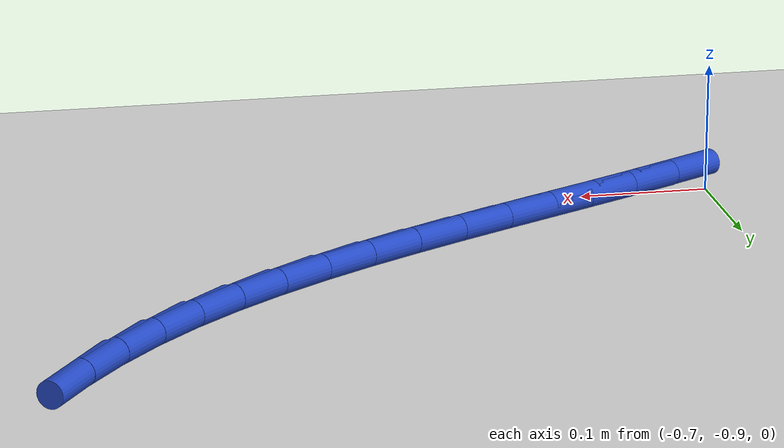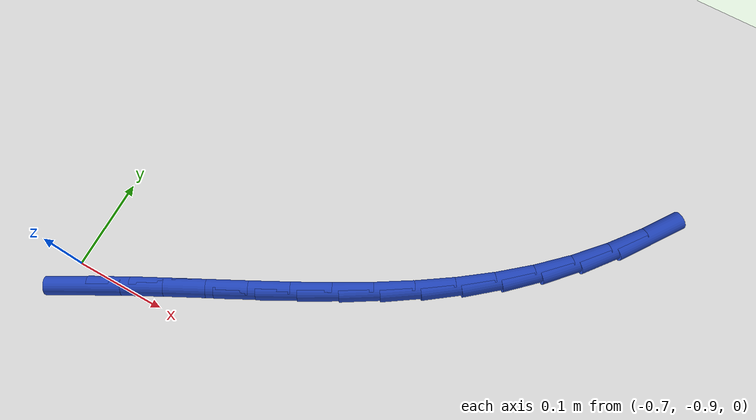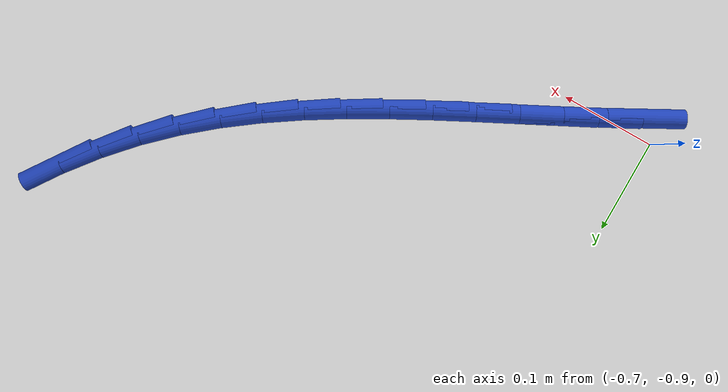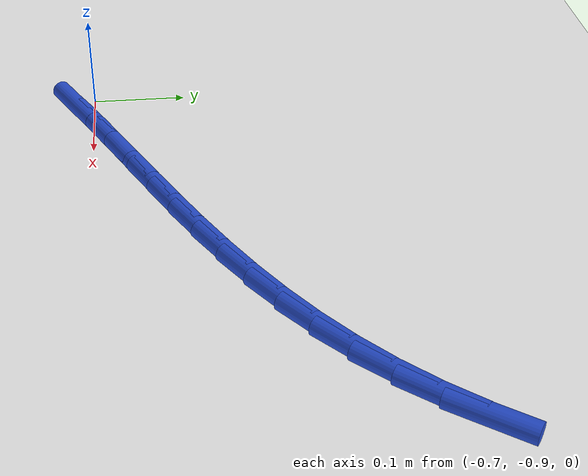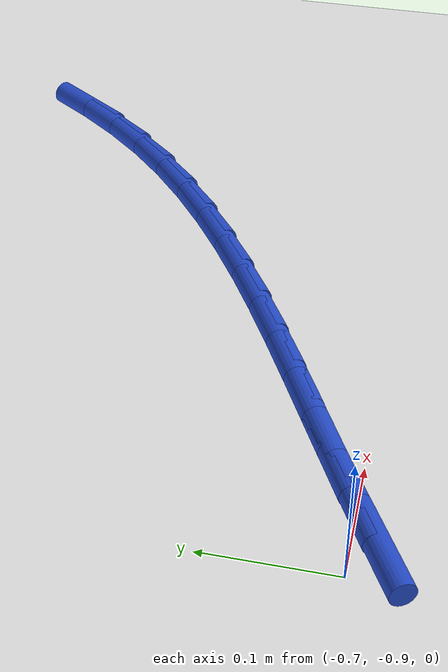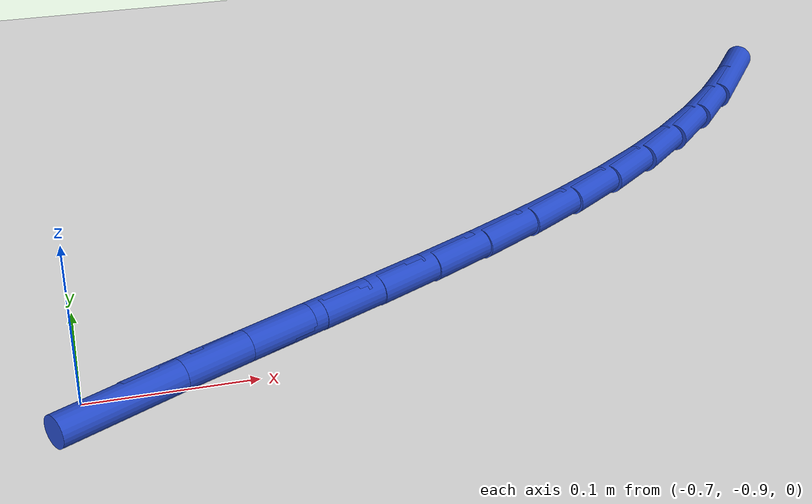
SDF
<sdf version="1.6">
 <world name="default">
  <model name="ground_plane">
   <static>1</static>
   <link name="link">
    <collision name="collision">
     <geometry><plane><normal>0 0 1</normal><size>100 100</size></plane></geometry>
     <surface><friction><ode><mu>100</mu><mu2>50</mu2></ode></friction></surface>
    </collision>
    <visual name="visual">
     <cast_shadows>0</cast_shadows>
     <geometry><plane><normal>0 0 1</normal><size>100 100</size></plane></geometry>
     <material>
      <script><uri>file://media/materials/scripts/gazebo.material</uri><name>Gazebo/WhiteGlow</name></script>
     </material>
    </visual>
   </link>
  </model>
  <model name="line">
   <link name="link_152">
    <pose>-0.679741165922441 -0.918991069380806 0.01 0 1.57 0.49620791036226697</pose>
    <collision name="collision">
     <geometry><cylinder><radius>0.01</radius><length>0.08</length></cylinder></geometry>
    </collision>
    <visual name="visual">
     <material>
      <script><name>Gazebo/Blue</name><uri>file://media/materials/scripts/gazebo.material</uri></script>
     </material>
     <geometry><cylinder><radius>0.01</radius><length>0.08</length></cylinder></geometry>
    </visual>
   </link>
   <link name="link_153">
    <pose>-0.6405822551198247 -0.8977908728529085 0.01 0 1.57 0.47995255468752146</pose>
    <collision name="collision">
     <geometry><cylinder><radius>0.01</radius><length>0.08</length></cylinder></geometry>
    </collision>
    <visual name="visual">
     <material>
      <script><name>Gazebo/Blue</name><uri>file://media/materials/scripts/gazebo.material</uri></script>
     </material>
     <geometry><cylinder><radius>0.01</radius><length>0.08</length></cylinder></geometry>
    </visual>
   </link>
   <link name="link_154">
    <pose>-0.6011820539588266 -0.8772810768231565 0.01 0 1.57 0.4714216084250145</pose>
    <collision name="collision">
     <geometry><cylinder><radius>0.01</radius><length>0.08</length></cylinder></geometry>
    </collision>
    <visual name="visual">
     <material>
      <script><name>Gazebo/Blue</name><uri>file://media/materials/scripts/gazebo.material</uri></script>
     </material>
     <geometry><cylinder><radius>0.01</radius><length>0.08</length></cylinder></geometry>
    </visual>
   </link>
   <link name="link_155">
    <pose>-0.5617433349766301 -0.8571769683386996 0.01 0 1.57 0.47066859418516294</pose>
    <collision name="collision">
     <geometry><cylinder><radius>0.01</radius><length>0.08</length></cylinder></geometry>
    </collision>
    <visual name="visual">
     <material>
      <script><name>Gazebo/Blue</name><uri>file://media/materials/scripts/gazebo.material</uri></script>
     </material>
     <geometry><cylinder><radius>0.01</radius><length>0.08</length></cylinder></geometry>
    </visual>
   </link>
   <link name="link_156">
    <pose>-0.5224688707104164 -0.837193834446687 0.01 0 1.57 0.4777981832033589</pose>
    <collision name="collision">
     <geometry><cylinder><radius>0.01</radius><length>0.08</length></cylinder></geometry>
    </collision>
    <visual name="visual">
     <material>
      <script><name>Gazebo/Blue</name><uri>file://media/materials/scripts/gazebo.material</uri></script>
     </material>
     <geometry><cylinder><radius>0.01</radius><length>0.08</length></cylinder></geometry>
    </visual>
   </link>
   <link name="link_157">
    <pose>-0.4835614336973669 -0.8170469621942685 0.01 0 1.57 0.49296985285635936</pose>
    <collision name="collision">
     <geometry><cylinder><radius>0.01</radius><length>0.08</length></cylinder></geometry>
    </collision>
    <visual name="visual">
     <material>
      <script><name>Gazebo/Blue</name><uri>file://media/materials/scripts/gazebo.material</uri></script>
     </material>
     <geometry><cylinder><radius>0.01</radius><length>0.08</length></cylinder></geometry>
    </visual>
   </link>
   <link name="link_158">
    <pose>-0.4452237964746636 -0.7964516386285929 0.01 0 1.57 0.5163872089136226</pose>
    <collision name="collision">
     <geometry><cylinder><radius>0.01</radius><length>0.08</length></cylinder></geometry>
    </collision>
    <visual name="visual">
     <material>
      <script><name>Gazebo/Blue</name><uri>file://media/materials/scripts/gazebo.material</uri></script>
     </material>
     <geometry><cylinder><radius>0.01</radius><length>0.08</length></cylinder></geometry>
    </visual>
   </link>
   <link name="link_159">
    <pose>-0.40765873157948757 -0.7751231507968096 0.01 0 1.57 0.5482703860346806</pose>
    <collision name="collision">
     <geometry><cylinder><radius>0.01</radius><length>0.08</length></cylinder></geometry>
    </collision>
    <visual name="visual">
     <material>
      <script><name>Gazebo/Blue</name><uri>file://media/materials/scripts/gazebo.material</uri></script>
     </material>
     <geometry><cylinder><radius>0.01</radius><length>0.08</length></cylinder></geometry>
    </visual>
   </link>
   <link name="link_160">
    <pose>-0.3710690115490218 -0.7527767857460685 0.01 0 1.57 0.5888080369763775</pose>
    <collision name="collision">
     <geometry><cylinder><radius>0.01</radius><length>0.08</length></cylinder></geometry>
    </collision>
    <visual name="visual">
     <material>
      <script><name>Gazebo/Blue</name><uri>file://media/materials/scripts/gazebo.material</uri></script>
     </material>
     <geometry><cylinder><radius>0.01</radius><length>0.08</length></cylinder></geometry>
    </visual>
   </link>
   <link name="link_161">
    <pose>-0.33565740892044743 -0.7291278305235189 0.01 0 1.57 0.6380859897668624</pose>
    <collision name="collision">
     <geometry><cylinder><radius>0.01</radius><length>0.08</length></cylinder></geometry>
    </collision>
    <visual name="visual">
     <material>
      <script><name>Gazebo/Blue</name><uri>file://media/materials/scripts/gazebo.material</uri></script>
     </material>
     <geometry><cylinder><radius>0.01</radius><length>0.08</length></cylinder></geometry>
    </visual>
   </link>
   <link name="link_162">
    <pose>-0.3016266962309461 -0.7038915721763098 0.01 0 1.57 0.6959931688586609</pose>
    <collision name="collision">
     <geometry><cylinder><radius>0.01</radius><length>0.08</length></cylinder></geometry>
    </collision>
    <visual name="visual">
     <material>
      <script><name>Gazebo/Blue</name><uri>file://media/materials/scripts/gazebo.material</uri></script>
     </material>
     <geometry><cylinder><radius>0.01</radius><length>0.08</length></cylinder></geometry>
    </visual>
   </link>
   <link name="link_163">
    <pose>-0.2691796460176998 -0.6767832977515909 0.01 0 1.57 0.7621133055931593</pose>
    <collision name="collision">
     <geometry><cylinder><radius>0.01</radius><length>0.08</length></cylinder></geometry>
    </collision>
    <visual name="visual">
     <material>
      <script><name>Gazebo/Blue</name><uri>file://media/materials/scripts/gazebo.material</uri></script>
     </material>
     <geometry><cylinder><radius>0.01</radius><length>0.08</length></cylinder></geometry>
    </visual>
   </link>
   <link name="link_164">
    <pose>-0.23851903081788994 -0.6475182942965114 0.01 0 1.57 0.8343208949549273</pose>
    <collision name="collision">
     <geometry><cylinder><radius>0.01</radius><length>0.08</length></cylinder></geometry>
    </collision>
    <visual name="visual">
     <material>
      <script><name>Gazebo/Blue</name><uri>file://media/materials/scripts/gazebo.material</uri></script>
     </material>
     <geometry><cylinder><radius>0.01</radius><length>0.08</length></cylinder></geometry>
    </visual>
   </link>
   <link name="link_165">
    <pose>-0.20982207414152254 -0.6158665569281254 0.01 0 1.57 0.9035641988386046</pose>
    <collision name="collision">
     <geometry><cylinder><radius>0.01</radius><length>0.08</length></cylinder></geometry>
    </collision>
    <visual name="visual">
     <material>
      <script><name>Gazebo/Blue</name><uri>file://media/materials/scripts/gazebo.material</uri></script>
     </material>
     <geometry><cylinder><radius>0.01</radius><length>0.08</length></cylinder></geometry>
    </visual>
   </link>
   <link name="link_166">
    <pose>-0.18310252756649123 -0.5819481228151204 0.01 0 1.57 0.9667561590500767</pose>
    <collision name="collision">
     <geometry><cylinder><radius>0.01</radius><length>0.08</length></cylinder></geometry>
    </collision>
    <visual name="visual">
     <material>
      <script><name>Gazebo/Blue</name><uri>file://media/materials/scripts/gazebo.material</uri></script>
     </material>
     <geometry><cylinder><radius>0.01</radius><length>0.08</length></cylinder></geometry>
    </visual>
   </link>
  </model>
 </world>
</sdf>
